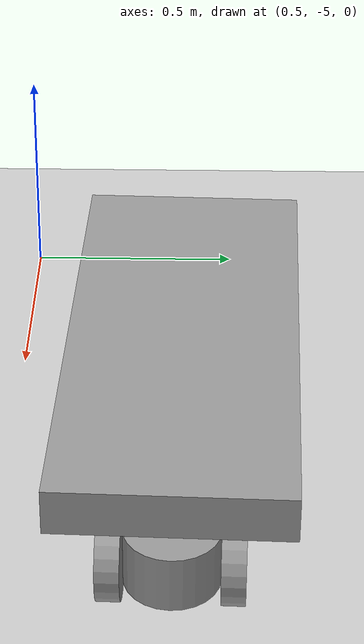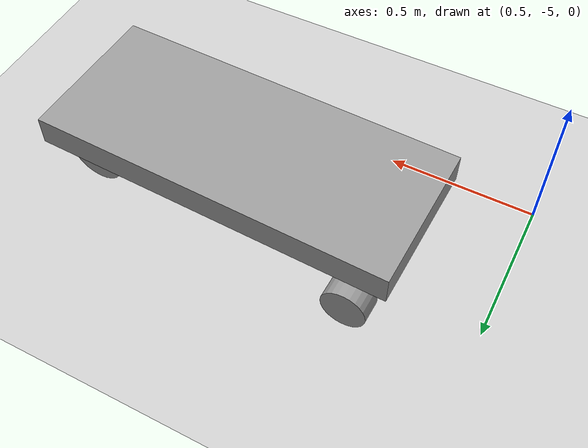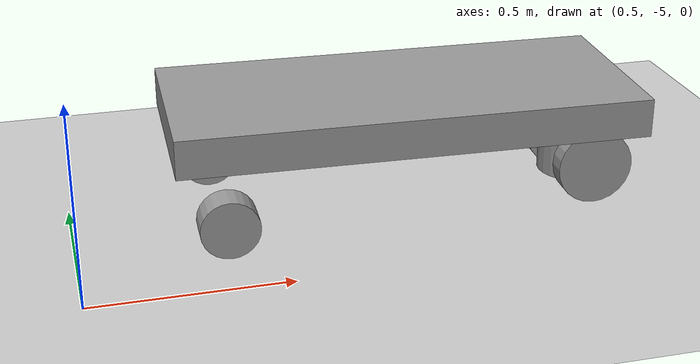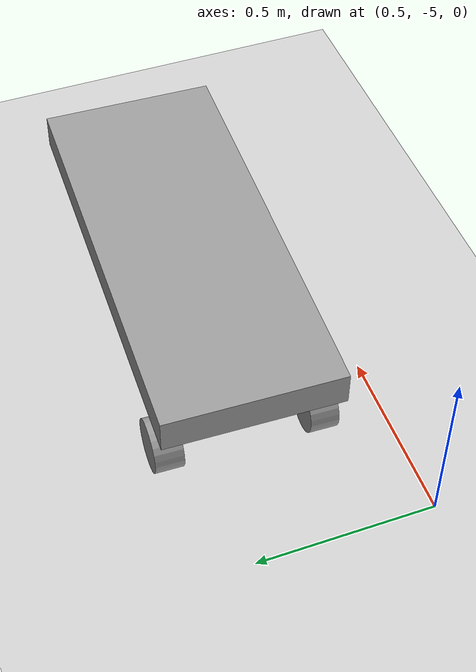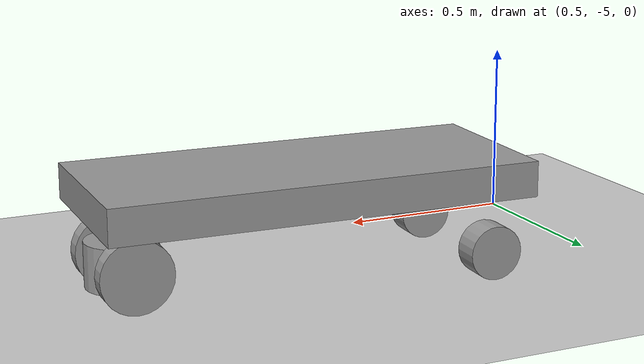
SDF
<sdf version="1.6">
 <world name="default">
  <model name="ground_plane">
   <static>1</static>
   <link name="link">
    <collision name="collision">
     <geometry><plane><normal>0 0 1</normal><size>100 100</size></plane></geometry>
     <surface><friction><ode><mu>100</mu><mu2>50</mu2></ode></friction></surface>
    </collision>
    <visual name="visual">
     <cast_shadows>0</cast_shadows>
     <geometry><plane><normal>0 0 1</normal><size>100 100</size></plane></geometry>
     <material>
      <script><uri>file://media/materials/scripts/gazebo.material</uri><name>Gazebo/Grey</name></script>
     </material>
    </visual>
   </link>
  </model>
  <model name="T2tug">
   <link name="link_0">
    <inertial>
     <mass>1</mass>
     <inertia>
      <ixx>0.166667</ixx>
      <ixy>0</ixy>
      <ixz>0</ixz>
      <iyy>0.166667</iyy>
      <iyz>0</iyz>
      <izz>0.166667</izz>
     </inertia>
    </inertial>
    <pose>-0.091667 0 0.15 0 -0 0</pose>
    <visual name="visual">
     <geometry><box><size>1.2 0.5 0.1</size></box></geometry>
     <material>
      <lighting>1</lighting>
      <script><uri>file://media/materials/scripts/gazebo.material</uri><name>Gazebo/Grey</name></script>
      <shader type="pixel"><normal_map>__default__</normal_map></shader>
      <ambient>0.3 0.3 0.3 1</ambient>
      <diffuse>0.7 0.7 0.7 1</diffuse>
      <specular>0.01 0.01 0.01 1</specular>
      <emissive>0 0 0 1</emissive>
     </material>
    </visual>
    <collision name="collision">
     <geometry><box><size>1.2 0.5 0.1</size></box></geometry>
     <surface>
      <friction>
       <ode><mu>1</mu><mu2>1</mu2><fdir1>0 0 0</fdir1><slip1>0</slip1><slip2>0</slip2></ode>
       <torsional>
        <coefficient>1</coefficient>
        <patch_radius>0</patch_radius>
        <surface_radius>0</surface_radius>
        <use_patch_radius>1</use_patch_radius>
        <ode><slip>0</slip></ode>
       </torsional>
      </friction>
      <bounce><restitution_coefficient>0</restitution_coefficient><threshold>1e+06</threshold></bounce>
      <contact>
       <collide_without_contact>0</collide_without_contact>
       <collide_without_contact_bitmask>1</collide_without_contact_bitmask>
       <collide_bitmask>1</collide_bitmask>
       <ode>
        <soft_cfm>0</soft_cfm>
        <soft_erp>0.2</soft_erp>
        <kp>1e+13</kp>
        <kd>1</kd>
        <max_vel>0.01</max_vel>
        <min_depth>0</min_depth>
       </ode>
       <bullet>
        <split_impulse>1</split_impulse>
        <split_impulse_penetration_threshold>-0.01</split_impulse_penetration_threshold>
        <soft_cfm>0</soft_cfm>
        <soft_erp>0.2</soft_erp>
        <kp>1e+13</kp>
        <kd>1</kd>
       </bullet>
      </contact>
     </surface>
    </collision>
   </link>
   <link name="link_2">
    <inertial>
     <mass>1</mass>
     <inertia><ixx>0.145833</ixx><ixy>0</ixy><ixz>0</ixz><iyy>0.145833</iyy><iyz>0</iyz><izz>0.125</izz></inertia>
    </inertial>
    <pose>0.408333 -0.125 -0.02 1.5707 -0 0</pose>
    <visual name="visual">
     <geometry><cylinder><radius>0.1</radius><length>0.05</length></cylinder></geometry>
     <material>
      <lighting>1</lighting>
      <script><uri>file://media/materials/scripts/gazebo.material</uri><name>Gazebo/Grey</name></script>
      <shader type="pixel"><normal_map>__default__</normal_map></shader>
      <ambient>0.3 0.3 0.3 1</ambient>
      <diffuse>0.7 0.7 0.7 1</diffuse>
      <specular>0.01 0.01 0.01 1</specular>
      <emissive>0 0 0 1</emissive>
     </material>
    </visual>
    <collision name="collision">
     <geometry><cylinder><radius>0.1</radius><length>0.05</length></cylinder></geometry>
     <surface>
      <friction>
       <ode><mu>1</mu><mu2>1</mu2><fdir1>0 0 0</fdir1><slip1>0</slip1><slip2>0</slip2></ode>
       <torsional>
        <coefficient>1</coefficient>
        <patch_radius>0</patch_radius>
        <surface_radius>0</surface_radius>
        <use_patch_radius>1</use_patch_radius>
        <ode><slip>0</slip></ode>
       </torsional>
      </friction>
      <bounce><restitution_coefficient>0</restitution_coefficient><threshold>1e+06</threshold></bounce>
      <contact>
       <collide_without_contact>0</collide_without_contact>
       <collide_without_contact_bitmask>1</collide_without_contact_bitmask>
       <collide_bitmask>1</collide_bitmask>
       <ode>
        <soft_cfm>0</soft_cfm>
        <soft_erp>0.2</soft_erp>
        <kp>1e+13</kp>
        <kd>1</kd>
        <max_vel>0.01</max_vel>
        <min_depth>0</min_depth>
       </ode>
       <bullet>
        <split_impulse>1</split_impulse>
        <split_impulse_penetration_threshold>-0.01</split_impulse_penetration_threshold>
        <soft_cfm>0</soft_cfm>
        <soft_erp>0.2</soft_erp>
        <kp>1e+13</kp>
        <kd>1</kd>
       </bullet>
      </contact>
     </surface>
    </collision>
   </link>
   <link name="link_2_clone">
    <inertial>
     <mass>1</mass>
     <inertia><ixx>0.145833</ixx><ixy>0</ixy><ixz>0</ixz><iyy>0.145833</iyy><iyz>0</iyz><izz>0.125</izz></inertia>
    </inertial>
    <pose>0.408333 0.125 -0.02 1.5707 -0 0</pose>
    <visual name="visual">
     <geometry><cylinder><radius>0.1</radius><length>0.05</length></cylinder></geometry>
     <material>
      <lighting>1</lighting>
      <script><uri>file://media/materials/scripts/gazebo.material</uri><name>Gazebo/Grey</name></script>
      <shader type="pixel"><normal_map>__default__</normal_map></shader>
      <ambient>0.3 0.3 0.3 1</ambient>
      <diffuse>0.7 0.7 0.7 1</diffuse>
      <specular>0.01 0.01 0.01 1</specular>
      <emissive>0 0 0 1</emissive>
     </material>
    </visual>
    <collision name="collision">
     <geometry><cylinder><radius>0.1</radius><length>0.05</length></cylinder></geometry>
     <surface>
      <friction>
       <ode><mu>1</mu><mu2>1</mu2><fdir1>0 0 0</fdir1><slip1>0</slip1><slip2>0</slip2></ode>
       <torsional>
        <coefficient>1</coefficient>
        <patch_radius>0</patch_radius>
        <surface_radius>0</surface_radius>
        <use_patch_radius>1</use_patch_radius>
        <ode><slip>0</slip></ode>
       </torsional>
      </friction>
      <bounce><restitution_coefficient>0</restitution_coefficient><threshold>1e+06</threshold></bounce>
      <contact>
       <collide_without_contact>0</collide_without_contact>
       <collide_without_contact_bitmask>1</collide_without_contact_bitmask>
       <collide_bitmask>1</collide_bitmask>
       <ode>
        <soft_cfm>0</soft_cfm>
        <soft_erp>0.2</soft_erp>
        <kp>1e+13</kp>
        <kd>1</kd>
        <max_vel>0.01</max_vel>
        <min_depth>0</min_depth>
       </ode>
       <bullet>
        <split_impulse>1</split_impulse>
        <split_impulse_penetration_threshold>-0.01</split_impulse_penetration_threshold>
        <soft_cfm>0</soft_cfm>
        <soft_erp>0.2</soft_erp>
        <kp>1e+13</kp>
        <kd>1</kd>
       </bullet>
      </contact>
     </surface>
    </collision>
   </link>
   <link name="link_2_clone_0">
    <inertial>
     <mass>1</mass>
     <inertia><ixx>0.145833</ixx><ixy>0</ixy><ixz>0</ixz><iyy>0.145833</iyy><iyz>0</iyz><izz>0.125</izz></inertia>
    </inertial>
    <pose>-0.566667 0.215 -0.045 1.5707 -0 0</pose>
    <visual name="visual">
     <geometry><cylinder><radius>0.075</radius><length>0.08</length></cylinder></geometry>
     <material>
      <lighting>1</lighting>
      <script><uri>file://media/materials/scripts/gazebo.material</uri><name>Gazebo/Grey</name></script>
      <shader type="pixel"><normal_map>__default__</normal_map></shader>
      <ambient>0.3 0.3 0.3 1</ambient>
      <diffuse>0.7 0.7 0.7 1</diffuse>
      <specular>0.01 0.01 0.01 1</specular>
      <emissive>0 0 0 1</emissive>
     </material>
    </visual>
    <collision name="collision">
     <geometry><cylinder><radius>0.075</radius><length>0.08</length></cylinder></geometry>
     <surface>
      <friction>
       <ode><mu>1</mu><mu2>1</mu2><fdir1>0 0 0</fdir1><slip1>0</slip1><slip2>0</slip2></ode>
       <torsional>
        <coefficient>1</coefficient>
        <patch_radius>0</patch_radius>
        <surface_radius>0</surface_radius>
        <use_patch_radius>1</use_patch_radius>
        <ode><slip>0</slip></ode>
       </torsional>
      </friction>
      <bounce><restitution_coefficient>0</restitution_coefficient><threshold>1e+06</threshold></bounce>
      <contact>
       <collide_without_contact>0</collide_without_contact>
       <collide_without_contact_bitmask>1</collide_without_contact_bitmask>
       <collide_bitmask>1</collide_bitmask>
       <ode>
        <soft_cfm>0</soft_cfm>
        <soft_erp>0.2</soft_erp>
        <kp>1e+13</kp>
        <kd>1</kd>
        <max_vel>0.01</max_vel>
        <min_depth>0</min_depth>
       </ode>
       <bullet>
        <split_impulse>1</split_impulse>
        <split_impulse_penetration_threshold>-0.01</split_impulse_penetration_threshold>
        <soft_cfm>0</soft_cfm>
        <soft_erp>0.2</soft_erp>
        <kp>1e+13</kp>
        <kd>1</kd>
       </bullet>
      </contact>
     </surface>
    </collision>
   </link>
   <link name="link_3">
    <inertial>
     <mass>1</mass>
     <inertia><ixx>0.145833</ixx><ixy>0</ixy><ixz>0</ixz><iyy>0.145833</iyy><iyz>0</iyz><izz>0.125</izz></inertia>
     <pose>0 0 0.1 0 -0 0</pose>
    </inertial>
    <pose>0.408333 0 -0.02 0 -0 0</pose>
    <visual name="visual">
     <geometry><cylinder><radius>0.1</radius><length>0.125</length></cylinder></geometry>
     <material>
      <lighting>1</lighting>
      <script><uri>file://media/materials/scripts/gazebo.material</uri><name>Gazebo/Grey</name></script>
      <shader type="pixel"><normal_map>__default__</normal_map></shader>
      <ambient>0.3 0.3 0.3 1</ambient>
      <diffuse>0.7 0.7 0.7 1</diffuse>
      <specular>0.01 0.01 0.01 1</specular>
      <emissive>0 0 0 1</emissive>
     </material>
    </visual>
    <collision name="collision">
     <geometry><cylinder><radius>0.1</radius><length>0.125</length></cylinder></geometry>
     <surface>
      <friction>
       <ode><mu>1</mu><mu2>1</mu2><fdir1>0 0 0</fdir1><slip1>0</slip1><slip2>0</slip2></ode>
       <torsional>
        <coefficient>1</coefficient>
        <patch_radius>0</patch_radius>
        <surface_radius>0</surface_radius>
        <use_patch_radius>1</use_patch_radius>
        <ode><slip>0</slip></ode>
       </torsional>
      </friction>
      <bounce><restitution_coefficient>0</restitution_coefficient><threshold>1e+06</threshold></bounce>
      <contact>
       <collide_without_contact>0</collide_without_contact>
       <collide_without_contact_bitmask>1</collide_without_contact_bitmask>
       <collide_bitmask>1</collide_bitmask>
       <ode>
        <soft_cfm>0</soft_cfm>
        <soft_erp>0.2</soft_erp>
        <kp>1e+13</kp>
        <kd>1</kd>
        <max_vel>0.01</max_vel>
        <min_depth>0</min_depth>
       </ode>
       <bullet>
        <split_impulse>1</split_impulse>
        <split_impulse_penetration_threshold>-0.01</split_impulse_penetration_threshold>
        <soft_cfm>0</soft_cfm>
        <soft_erp>0.2</soft_erp>
        <kp>1e+13</kp>
        <kd>1</kd>
       </bullet>
      </contact>
     </surface>
    </collision>
   </link>
   <link name="link_4">
    <inertial>
     <mass>1</mass>
     <inertia><ixx>0.145833</ixx><ixy>0</ixy><ixz>0</ixz><iyy>0.145833</iyy><iyz>0</iyz><izz>0.125</izz></inertia>
    </inertial>
    <pose>-0.566667 -0.215 -0.045 1.5707 -0 0</pose>
    <visual name="visual">
     <geometry><cylinder><radius>0.075</radius><length>0.08</length></cylinder></geometry>
     <material>
      <lighting>1</lighting>
      <script><uri>file://media/materials/scripts/gazebo.material</uri><name>Gazebo/Grey</name></script>
      <shader type="pixel"><normal_map>__default__</normal_map></shader>
      <ambient>0.3 0.3 0.3 1</ambient>
      <diffuse>0.7 0.7 0.7 1</diffuse>
      <specular>0.01 0.01 0.01 1</specular>
      <emissive>0 0 0 1</emissive>
     </material>
    </visual>
    <collision name="collision">
     <geometry><cylinder><radius>0.075</radius><length>0.08</length></cylinder></geometry>
     <surface>
      <friction>
       <ode><mu>1</mu><mu2>1</mu2><fdir1>0 0 0</fdir1><slip1>0</slip1><slip2>0</slip2></ode>
       <torsional>
        <coefficient>1</coefficient>
        <patch_radius>0</patch_radius>
        <surface_radius>0</surface_radius>
        <use_patch_radius>1</use_patch_radius>
        <ode><slip>0</slip></ode>
       </torsional>
      </friction>
      <bounce><restitution_coefficient>0</restitution_coefficient><threshold>1e+06</threshold></bounce>
      <contact>
       <collide_without_contact>0</collide_without_contact>
       <collide_without_contact_bitmask>1</collide_without_contact_bitmask>
       <collide_bitmask>1</collide_bitmask>
       <ode>
        <soft_cfm>0</soft_cfm>
        <soft_erp>0.2</soft_erp>
        <kp>1e+13</kp>
        <kd>1</kd>
        <max_vel>0.01</max_vel>
        <min_depth>0</min_depth>
       </ode>
       <bullet>
        <split_impulse>1</split_impulse>
        <split_impulse_penetration_threshold>-0.01</split_impulse_penetration_threshold>
        <soft_cfm>0</soft_cfm>
        <soft_erp>0.2</soft_erp>
        <kp>1e+13</kp>
        <kd>1</kd>
       </bullet>
      </contact>
     </surface>
    </collision>
   </link>
   <joint name="link_0_JOINT_2" type="revolute">
    <parent>link_0</parent>
    <child>link_3</child>
    <axis>
     <xyz>0 0 1</xyz>
     <use_parent_model_frame>0</use_parent_model_frame>
     <limit>
      <lower>-1.79769e+308</lower>
      <upper>1.79769e+308</upper>
      <effort>-1</effort>
      <velocity>-1</velocity>
     </limit>
     <dynamics>
      <spring_reference>0</spring_reference>
      <spring_stiffness>0</spring_stiffness>
      <damping>0</damping>
     </dynamics>
    </axis>
    <physics>
     <ode><limit><cfm>0</cfm><erp>0.2</erp></limit><suspension><cfm>0</cfm><erp>0.2</erp></suspension></ode>
    </physics>
   </joint>
   <joint name="link_0_JOINT_3" type="revolute">
    <parent>link_0</parent>
    <child>link_4</child>
    <axis>
     <xyz>0 0 1</xyz>
     <use_parent_model_frame>0</use_parent_model_frame>
     <limit>
      <lower>-1.79769e+308</lower>
      <upper>1.79769e+308</upper>
      <effort>-1</effort>
      <velocity>-1</velocity>
     </limit>
     <dynamics>
      <spring_reference>0</spring_reference>
      <spring_stiffness>0</spring_stiffness>
      <damping>0</damping>
     </dynamics>
    </axis>
    <physics>
     <ode><limit><cfm>0</cfm><erp>0.2</erp></limit><suspension><cfm>0</cfm><erp>0.2</erp></suspension></ode>
    </physics>
   </joint>
   <joint name="link_0_JOINT_4" type="revolute">
    <parent>link_0</parent>
    <child>link_2_clone_0</child>
    <axis>
     <xyz>0 0 -1</xyz>
     <use_parent_model_frame>0</use_parent_model_frame>
     <limit>
      <lower>-1.79769e+308</lower>
      <upper>1.79769e+308</upper>
      <effort>-1</effort>
      <velocity>-1</velocity>
     </limit>
     <dynamics>
      <spring_reference>0</spring_reference>
      <spring_stiffness>0</spring_stiffness>
      <damping>0</damping>
     </dynamics>
    </axis>
    <physics>
     <ode><limit><cfm>0</cfm><erp>0.2</erp></limit><suspension><cfm>0</cfm><erp>0.2</erp></suspension></ode>
    </physics>
   </joint>
   <joint name="link_3_JOINT_0" type="revolute">
    <parent>link_3</parent>
    <child>link_2</child>
    <axis>
     <xyz>0 0 1</xyz>
     <use_parent_model_frame>0</use_parent_model_frame>
     <limit>
      <lower>-1.79769e+308</lower>
      <upper>1.79769e+308</upper>
      <effort>-1</effort>
      <velocity>-1</velocity>
     </limit>
     <dynamics>
      <spring_reference>0</spring_reference>
      <spring_stiffness>0</spring_stiffness>
      <damping>0</damping>
     </dynamics>
    </axis>
    <physics>
     <ode><limit><cfm>0</cfm><erp>0.2</erp></limit><suspension><cfm>0</cfm><erp>0.2</erp></suspension></ode>
    </physics>
   </joint>
   <joint name="link_3_JOINT_1" type="revolute">
    <parent>link_3</parent>
    <child>link_2_clone</child>
    <axis>
     <xyz>0 0 -1</xyz>
     <use_parent_model_frame>0</use_parent_model_frame>
     <limit>
      <lower>-1.79769e+308</lower>
      <upper>1.79769e+308</upper>
      <effort>-1</effort>
      <velocity>-1</velocity>
     </limit>
     <dynamics>
      <spring_reference>0</spring_reference>
      <spring_stiffness>0</spring_stiffness>
      <damping>0</damping>
     </dynamics>
    </axis>
    <physics>
     <ode><limit><cfm>0</cfm><erp>0.2</erp></limit><suspension><cfm>0</cfm><erp>0.2</erp></suspension></ode>
    </physics>
   </joint>
   <static>0</static>
   <pose>1.44365 -4.61699 0.120004 6e-06 2e-06 -0.03321</pose>
  </model>
 </world>
</sdf>
